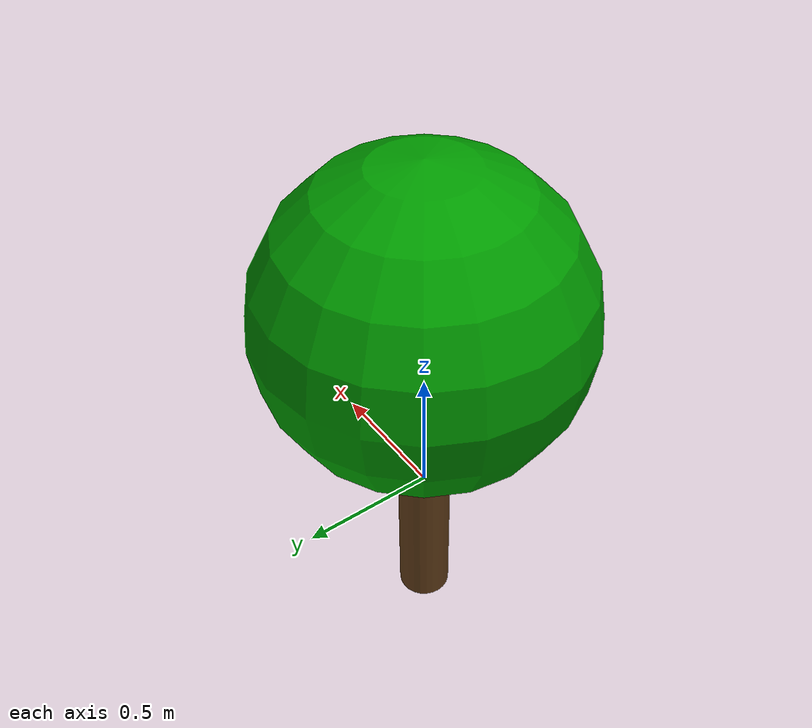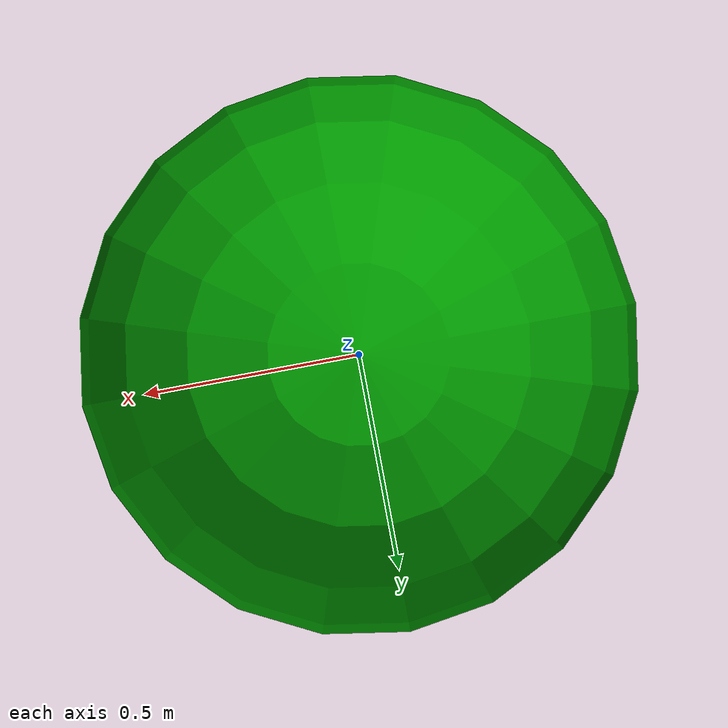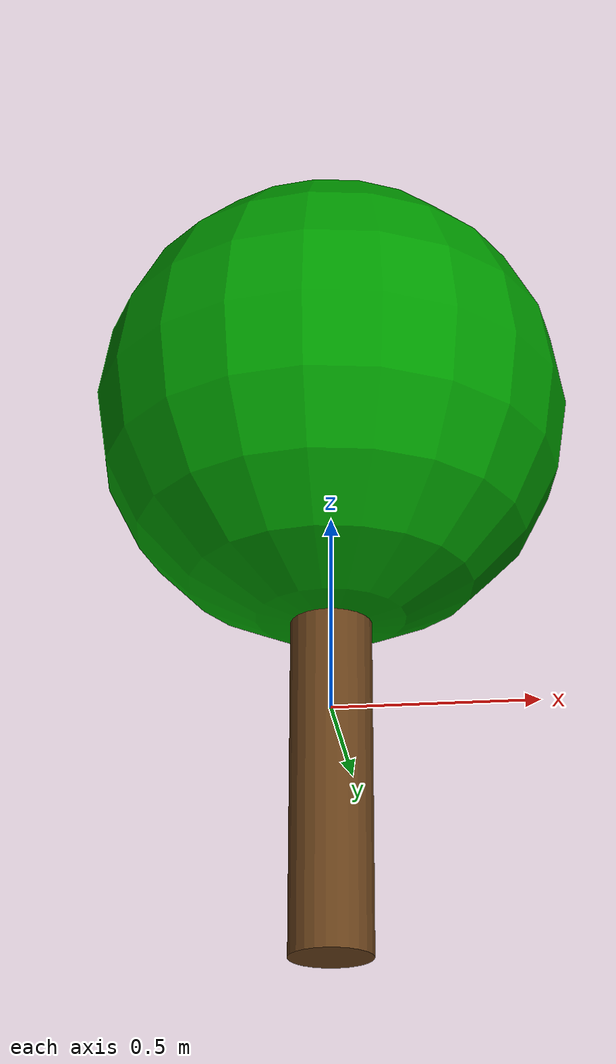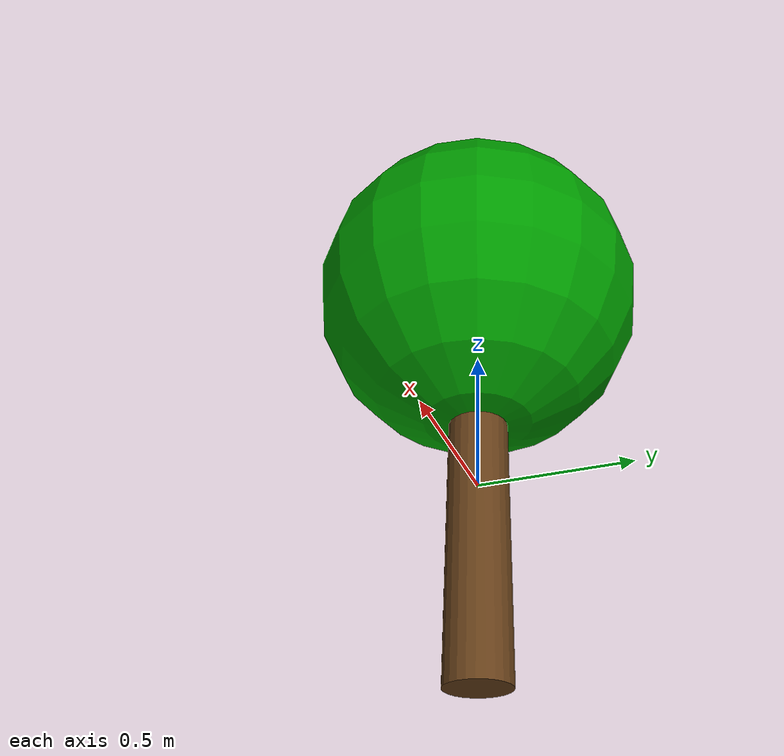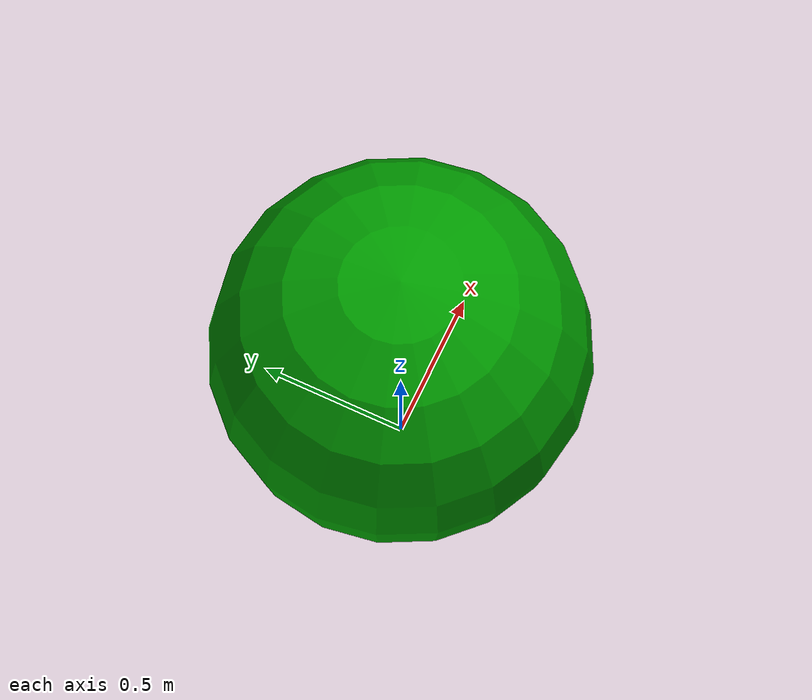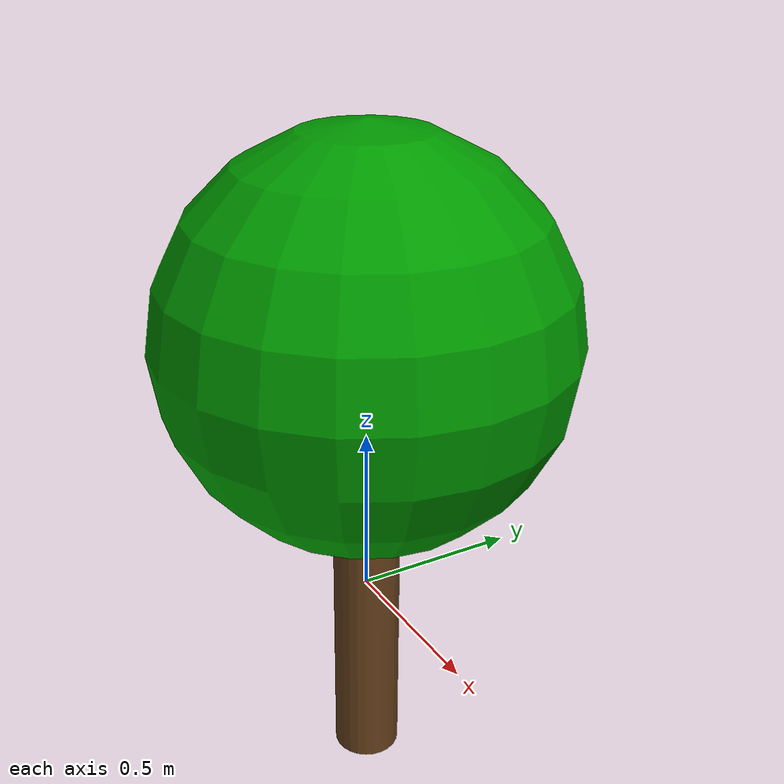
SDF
<sdf version="1.9">
  <model name="small_tree">
    <static>true</static>
    <link name="link">
      <visual name="trunk">
        <geometry>
          <cylinder>
            <radius>0.1</radius>
            <length>1.2</length>
          </cylinder>
        </geometry>
        <material>
          <ambient>0.4 0.25 0.1 1</ambient>
        </material>
      </visual>
      <visual name="leaves">
        <pose>0 0 0.8 0 0 0</pose>
        <geometry>
          <sphere>
            <radius>0.6</radius>
          </sphere>
        </geometry>
        <material>
          <ambient>0 0.6 0 1</ambient>
        </material>
      </visual>
    </link>
  </model>
</sdf>
